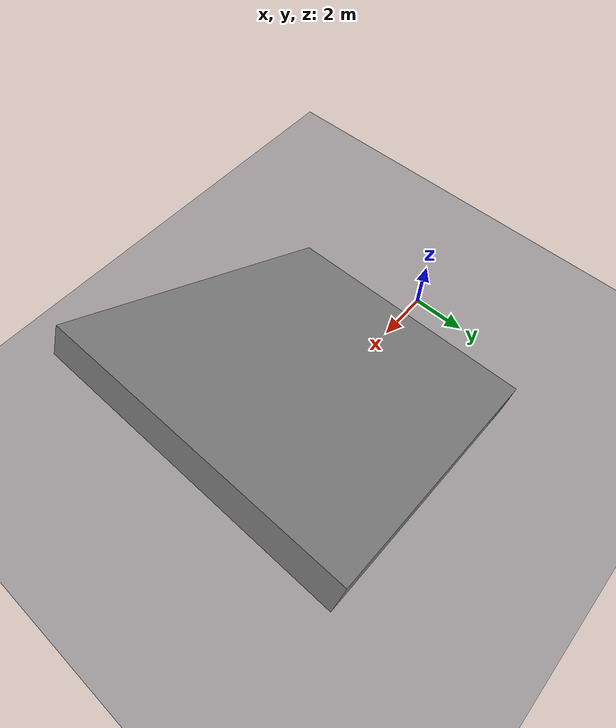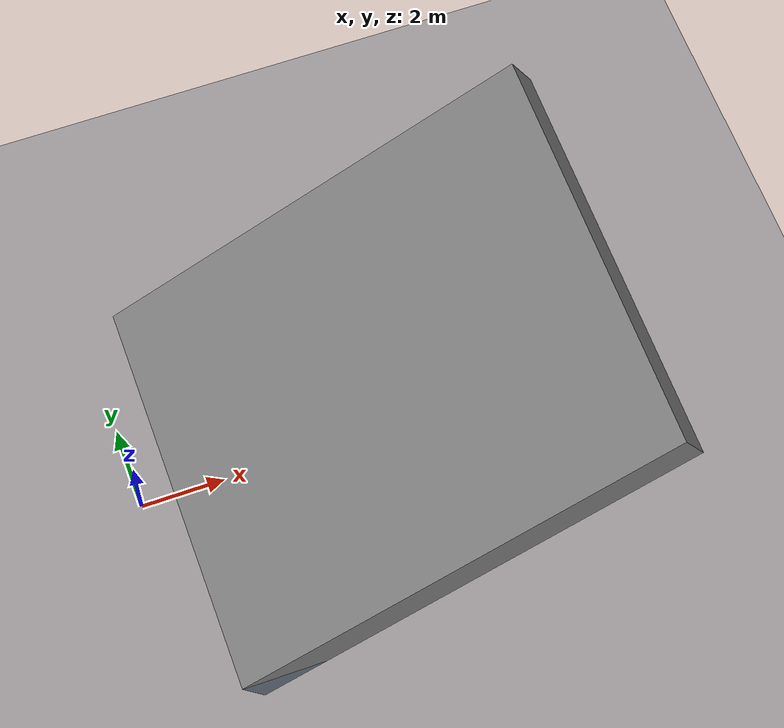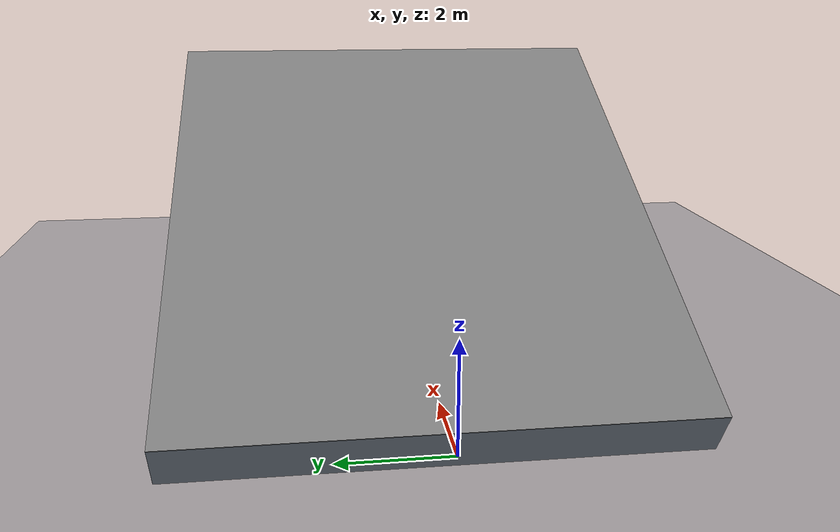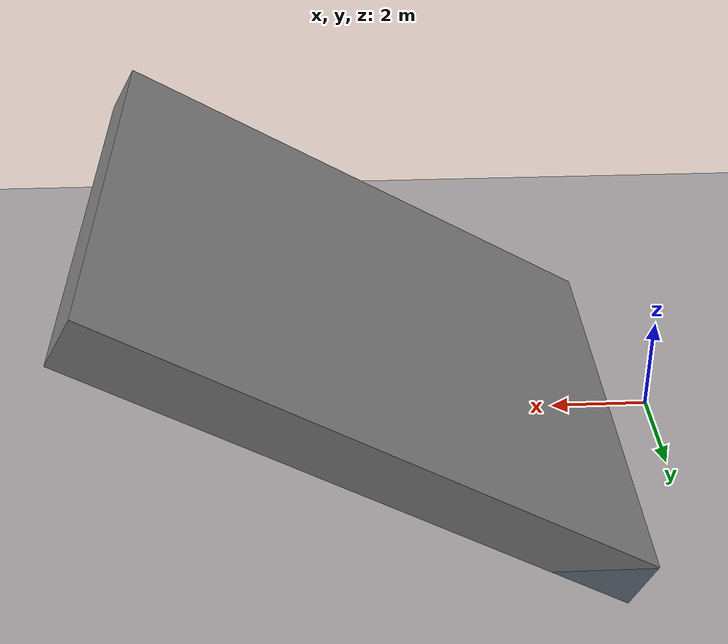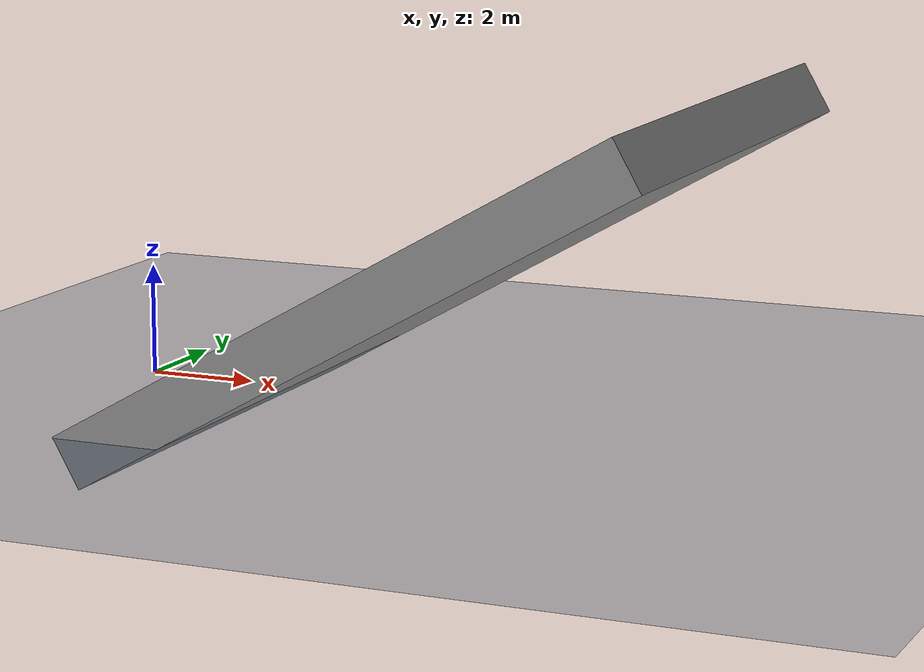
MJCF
<mujoco model="slope_10">
  <!-- Terrain Type: slope, Level: 10, Slope angle (degrees): 29.6831 -->
  <statistic center="0 0 0.1" extent="0.8" />
  <visual>
    <headlight diffuse="0.6 0.6 0.6" ambient="0.3 0.3 0.3" specular="0 0 0" />
    <rgba haze="0.15 0.25 0.35 1" />
    <global azimuth="-130" elevation="-20" />
  </visual>
  <asset>
    <texture type="skybox" builtin="gradient" rgb1="0.3 0.5 0.7" rgb2="0 0 0" width="512" height="3072" />
    <texture type="2d" name="groundplane" builtin="checker" mark="edge" rgb1="0.2 0.3 0.4" rgb2="0.1 0.2 0.3" markrgb="0.8 0.8 0.8" width="300" height="300" />
    <material name="groundplane" texture="groundplane" texuniform="true" texrepeat="5 5" reflectance="0.0" />
  </asset>
  <worldbody>
    <light pos="0 0 1.5" dir="0 0 -1" directional="true" />
    <geom name="floor" size="0 0 0.05" type="plane" material="groundplane" />
    <geom pos="6.047601522004908 0.0 2.4156113649036692" type="box" size="5.755215026391282 5.0 0.5" quat="0.9666377993314406 0.0 -0.25614715478347516 0.0" />
  </worldbody>
</mujoco>
